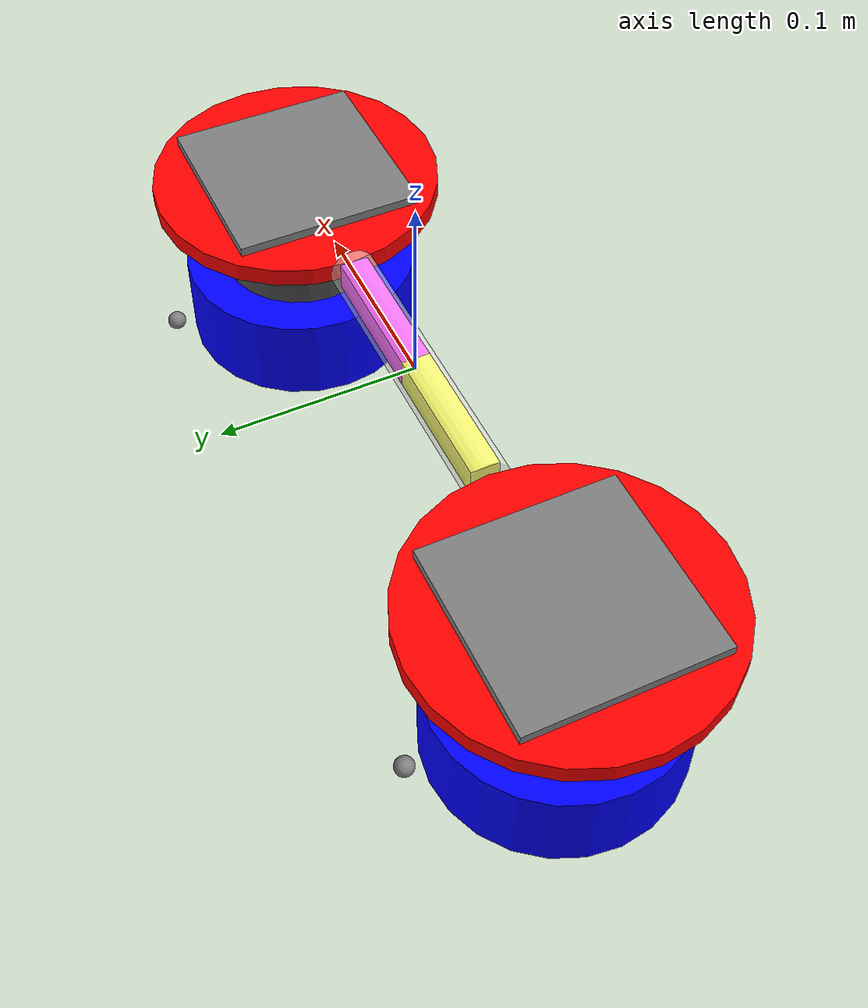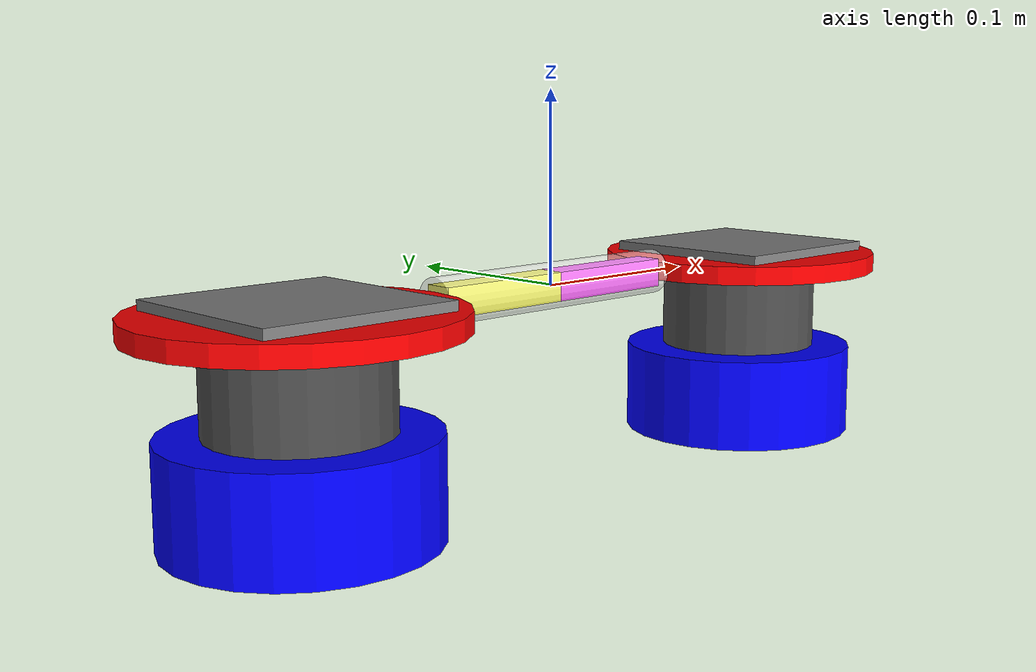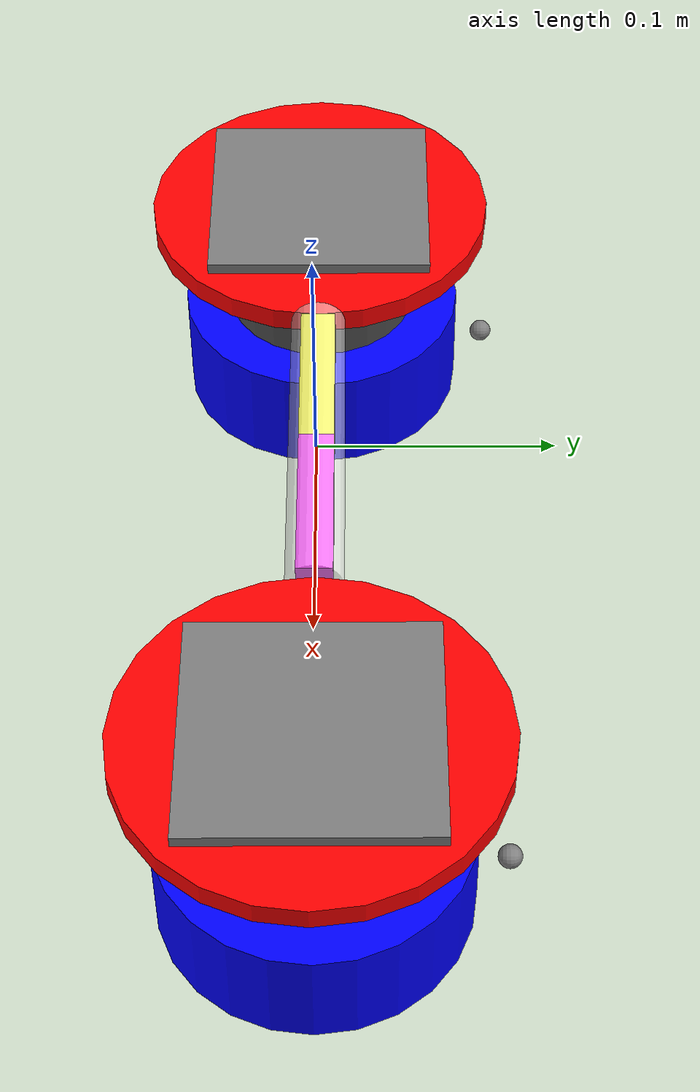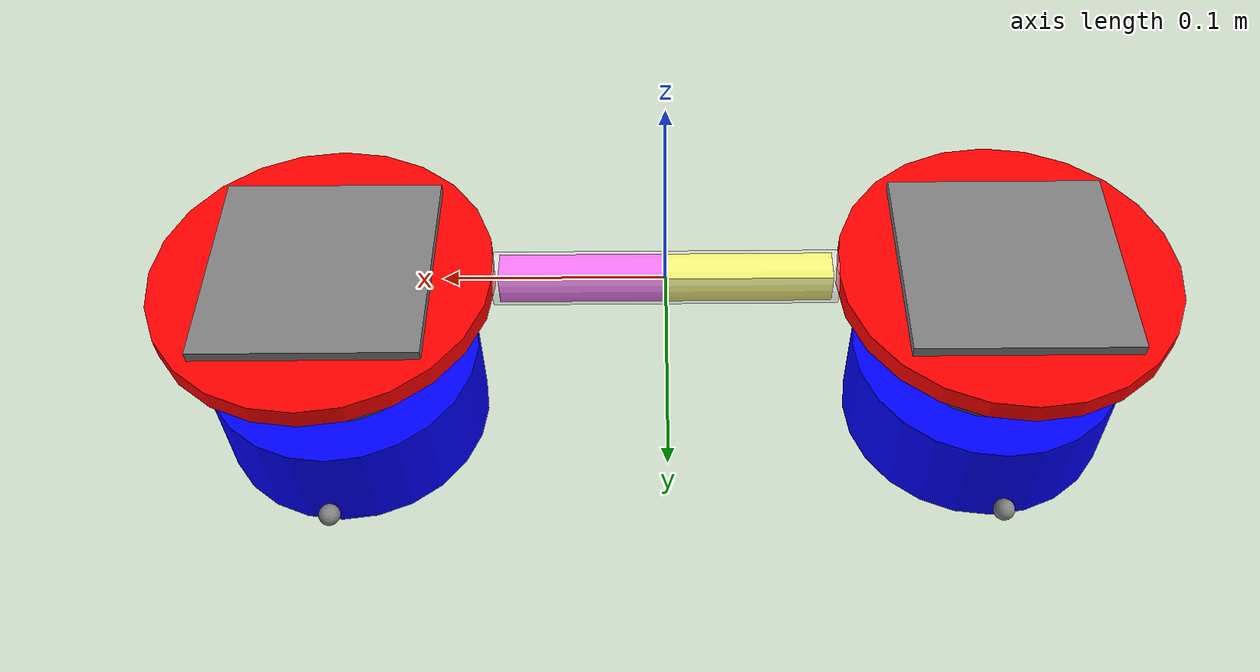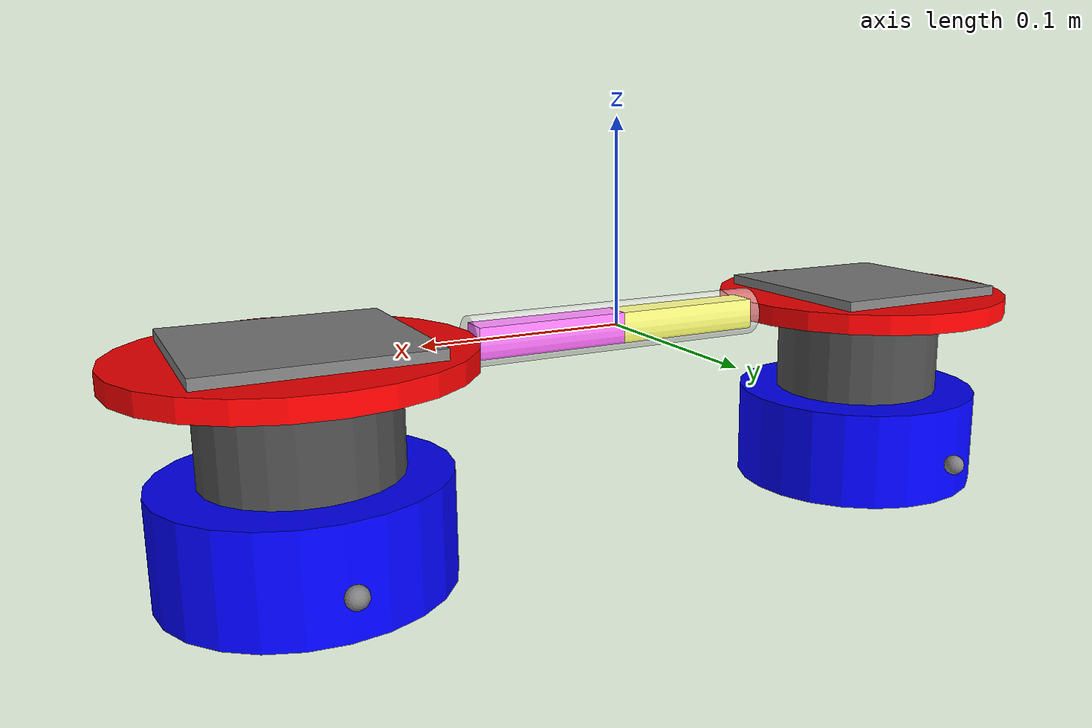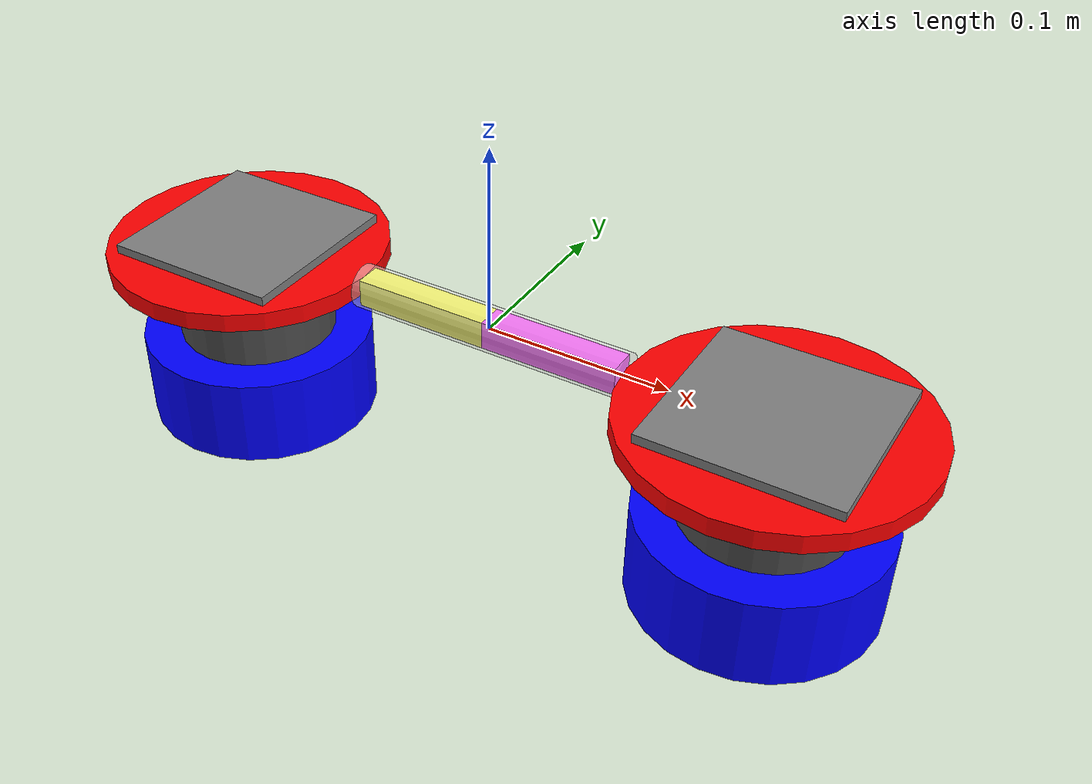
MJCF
<!-- The Lappa robot -->
<mujoco model="Lappa">
  <default>
    <geom friction=".5" />
  </default>
	<worldbody>
		<body name="root">
			<joint name="root_joint" type="free" pos="0 0 0" />
			<geom name="root" type="cylinder" fromto="-.075 0 0 .075 0 0" size=".005" mass=".0001" rgba=".5 .5 .5 .25" />
			<body name="connector" pos="0 0 0">
				<geom name="connector" type="cylinder" size=".012 .0775" euler="0 90 0" rgba="1 1 1 .5" mass="0.001" />
				<body name="a_connector" pos="-.0375 0 0">
					<geom name="a_connector" type="box" size=".0075 .0075 .0375" euler="0 90 0" rgba="1 1 0 1" mass="0.001" />
				</body>
				<body name="b_connector" pos=".0375 0 0">
					<geom name="b_connector" type="box" size=".0075 .0075 .0375" euler="0 90 0" rgba="1 0 1 1" mass="0.001" />
				</body>
			</body>
			<body name="a_module" pos=".155 0 0" euler="0 0 180">
				<geom name="a_house" type="cylinder" size=".0775 .005" rgba="1 0 0 1" mass="0.2" />
				<geom name="a_lock" type="box" size=".05 .05 .005" pos="0 0 .005" mass="0" />
				<joint name="a_h2" type="hinge" axis="0 1 0" pos=".0775 0 0" limited="true" range="-45 45" />
				<joint name="h3" type="hinge" pos=".155 0 0" axis="1 0 0" limited="true" range="-90 90" stiffness=".8" damping="2" />
				<site name="a_range" pos="0 -.0775 -.075" euler="90 0 0" />
				<body name="a_chamber" pos="0 0 0">
					<joint name="a_h1" type="hinge" axis="0 0 1" />
					<geom name="a_gear" type="cylinder" fromto="0 0 0 0 0 -.05" size=".044" rgba=".3 .3 .3 1" mass="0.05" />
					<geom name="a_chamber" type="cylinder" fromto="0 0 -.05 0 0 -.1" size=".065" rgba="0 0 1 1" mass="0.35" friction="2" />
					<site name="a_propeller" pos="0 0 -.05" />
          <body name="a_vacuum" pos="0 0 -.09" >
            <geom name="a_vaccum" type="box" size=".04 .04 .01" rgba=".8 .5 .5 1" margin=".01" gap=".01"  />
            <site name="a_vacuum" group="3" />
          </body>
				</body>
			</body>
			<body name="b_module" pos="-.155 0 0">
				<geom name="b_house" type="cylinder" size=".0775 .005" rgba="1 0 0 1" mass="0.2" />
				<geom name="b_lock" type="box" size=".05 .05 .005" pos="0 0 .005" mass="0" />
				<joint name="b_h2" type="hinge" axis="0 1 0" pos=".0775 0 0" limited="true" range="-45 45" />
				<site name="b_range" pos="0 .0775 -.075" euler="-90 0 0" />
				<body name="b_chamber" pos="0 0 0">
					<joint name="b_h1" type="hinge" axis="0 0 1" />
					<geom name="b_gear" type="cylinder" fromto="0 0 0 0 0 -.05" size=".044" rgba=".3 .3 .3 1" mass="0.05" />
					<geom name="b_chamber" type="cylinder" fromto="0 0 -.05 0 0 -.1" size=".065" rgba="0 0 1 1" mass="0.35" />
					<site name="b_propeller" pos="0 0 -.05" />
          <body name="b_vacuum" pos="0 0 -.09" >
            <geom name="b_vaccum" type="box" size=".04 .04 .01" rgba=".8 .5 .5 1" margin=".01" gap=".01"  />
            <site name="b_vacuum" group="4" />
          </body>
				</body>
			</body>
		</body>
	</worldbody>
  <sensor>
		<rangefinder name="a_range" site="a_range" />
		<rangefinder name="b_range" site="b_range" />
    <force name="a_vacuum" site="a_vacuum" />
    <force name="b_vacuum" site="b_vacuum" />
		<jointpos name="a_h1" joint="a_h1" />
		<jointpos name="b_h1" joint="b_h1" />
  </sensor>
	<actuator>
		<motor name="a_thrust" site="a_propeller" ctrllimited="true" ctrlrange="-1. 1." gear="0 0 10" />
		<motor name="b_thrust" site="b_propeller" ctrllimited="true" ctrlrange="-1. 1." gear="0 0 10" />
		<motor name="a_h1" joint="a_h1" gear="1" />
		<motor name="b_h1" joint="b_h1" gear="1" />
    <adhesion name="a_vacuum" body="a_vacuum" ctrlrange="0 1" gain="50" />
    <adhesion name="b_vacuum" body="b_vacuum" ctrlrange="0 1" gain="50" />
	</actuator>
</mujoco>
